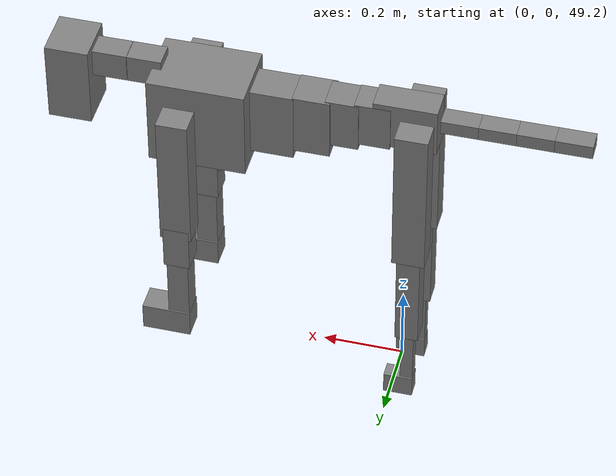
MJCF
<mujoco model="dog">

    <default>
        <joint armature="0.02" stiffness="1" damping="0.2" limited="true"/>
        <geom condim="3" friction="1 0.05 0.05" margin="0.01"/>
        <motor ctrllimited="true" ctrlrange="-1.0 1.0" forcelimited="true" gear="50"/>
    </default>

    <compiler inertiafromgeom="true" angle="radian"/>

    <option timestep="0.016" iterations="50" tolerance="1e-10" solver="Newton" jacobian="dense" cone="pyramidal"/>

    <size nconmax="20000" njmax="60000" nstack="5000000"/>
    <visual>
        <map force="0.1" zfar="30"/>
        <rgba haze="0.15 0.25 0.35 1"/>
        <quality shadowsize="2048"/>
        <global offwidth="800" offheight="800"/>
    </visual>

    <asset>
        <texture type="skybox" builtin="gradient" rgb1="0.3 0.5 0.7" rgb2="0 0 0" width="512" height="512"/>
        <texture name="texplane" type="2d" builtin="checker" rgb1=".2 .3 .4" rgb2=".1 0.15 0.2" width="512" height="512"
                 mark="cross" markrgb=".8 .8 .8"/>
        <texture name="texgeom" type="cube" builtin="flat" mark="cross" width="127" height="1278" rgb1="0.8 0.6 0.4"
                 rgb2="0.8 0.6 0.4" markrgb="1 1 1" random="0.01"/>

        <material name="matplane" reflectance="0.3" texture="texplane" texrepeat="1 1" texuniform="true"/>
        <material name="matgeom" texture="texgeom" texuniform="true" rgba="0.8 0.6 .4 1"/>
    </asset>

    <worldbody>
        <geom name="floor" pos="0 0 0" size="0 0 .25" type="plane" material="matplane" condim="3"/>

        <light directional="false" diffuse=".2 .2 .2" specular="0 0 0" pos="0 0 5" dir="0 0 -1" castshadow="false"/>
        <light mode="targetbodycom" target="torso" directional="false" diffuse=".8 .8 .8" specular="0.3 0.3 0.3"
               pos="0 0 4.0" dir="0 0 -1"/>

        <body name="root" pos="0 0 50">
            <freejoint name="root_1"/>
            <geom type="box" pos="0 0 -0.02" size="0.0774  0.0358  0.063" density="2030"/>

            <body name="spine1" pos="0.054 0 0">
                <joint name="spine1_y" axis="0 1 0" range="0 0.7" limited="true"/>
                <geom type="box" pos="0.02375 0 -0.03" size="0.04375  0.0375  0.05985" density="2030"/>

                <body name="spine2" pos="0.0612 0 0">
                    <joint name="spine2_y" axis="0 1 0" range="-0.15 0.15" limited="true"/>
                    <geom type="box" pos="0.03555  0  -0.04" size="0.04055  0.039  0.06615" density="2030"/>

                    <body name="spine3" pos="0.0730 0 0">
                        <joint name="spine3_y" axis="0 1 0" range="-0.15 0.15" limited="true"/>
                        <geom type="box" pos="0.03555  0  -0.057" size="0.04555  0.0445  0.081" density="2030"/>

                        <body name="spine4" pos="0.0780 0 0">
                            <joint name="spine4_y" axis="0 1 0" range="-0.15 0.15" limited="true"/>
                            <geom type="box" pos="0.05265  0  -0.07" size="0.05265  0.045  0.09135" density="2030"/>

                            <body name="torso" pos="0.1082 0 0">
                                <joint name="torso_y" axis="0 1 0" range="-0.15 0.15" limited="true"/>
                                <geom type="box" pos="0.11925  0  -0.085" size="0.11925  0.085  0.11745"
                                      density="2030"/>

                                <body name="neck1" pos="0.2160  0   0.0180">
                                    <joint name="neck1_y" axis="0 1 0" range="-1.2  -1" limited="true"/>
                                    <geom type="box" pos="0.0423  0  0" size="0.0423  0.03  0.036" density="2325"/>

                                    <body name="neck2" pos="0.0853  0  0">
                                        <joint name="neck2_y" axis="0 1 0" range="0.1  0" limited="true"/>
                                        <geom type="box" pos="0.0423  0  0" size="0.0423  0.03  0.036" density="2325"/>

                                        <body name="head" pos="0.0853  0  0">
                                            <joint name="head_y" axis="0 1 0" range="-0.3  -0.2" limited="true"/>
                                            <geom type="box" pos="0.0531  0  -0.055" size="0.0531  0.06  0.1044"
                                                  density="4030"/>

                                        </body>
                                    </body>
                                </body>

                                <body name="front_shoulder" pos="0.156  0   -0.0480">
                                    <joint name="front_shoulder_y" axis="0 1 0" range="-1 1.5" limited="true"/>
                                    <geom type="box" pos="0 0.13 -0.1542" size="0.0382  0.0326  0.1809" density="1158"/>
                                    <geom type="box" pos="0 -0.13 -0.1542" size="0.0382  0.0326  0.1809"
                                          density="1158"/>

                                    <body name="front_elbow" pos="0  0  -0.3085">
                                        <joint name="front_elbow_y" axis="0 1 0" range="-2 0" limited="true"/>
                                        <geom type="box" pos="0 0.13 -0.0590" size="0.0321  0.0329  0.0590"
                                              density="1081"/>
                                        <geom type="box" pos="0 -0.13 -0.0590" size="0.0321  0.0329  0.0590"
                                              density="1081"/>

                                        <body name="front_wrist" pos="0  0  -0.1180">
                                            <joint name="front_wrist_y" axis="0 1 0" range="-0.2 0" limited="true"/>
                                            <geom type="box" pos="0 0.13 -0.0868" size="0.0262  0.0291  0.0999"
                                                  density="1664"/>
                                            <geom type="box" pos="0 -0.13 -0.0868" size="0.0262  0.0291  0.0999"
                                                  density="1664"/>

                                            <body name="front_finger_end" pos="0  0  -0.1736">
                                                <joint name="front_finger_y" axis="0 1 0" range="-0.4 1"
                                                       limited="true"/>
                                                <geom type="box" pos="0.0328  0.13  -0.0206"
                                                      size="0.0602  0.0328  0.0356" density="1515"/>
                                                <geom type="box" pos="0.0328  -0.13  -0.0206"
                                                      size="0.0602  0.0328  0.0356" density="1515"/>

                                            </body>

                                        </body>
                                    </body>
                                </body>

                            </body>
                        </body>
                    </body>
                </body>
            </body>

            <body name="back_hip" pos="-0.03 0 -0.018">
                <joint name="back_hip_y" axis="0 1 0" range="-1.5 0.3" limited="true"/>
                <geom type="box" pos="0 0.07 -0.1769" size="0.0402  0.0315  0.1997" density="1154"/>
                <geom type="box" pos="0 -0.07 -0.1769" size="0.0402  0.0315  0.1997" density="1154"/>

                <body name="back_knee" pos="0  0  -0.3538">
                    <joint name="back_knee_y" axis="0 1 0" range="0 2.8" limited="true"/>
                    <geom type="box" pos="0 0.07 -0.1313" size="0.0286  0.0282  0.1468" density="1227"/>
                    <geom type="box" pos="0 -0.07 -0.1313" size="0.0286  0.0282  0.1468" density="1227"/>

                    <body name="back_ankle" pos="0  0  -0.2625">
                        <joint name="back_ankle_y" axis="0 1 0" range="-2.2 0" limited="true"/>
                        <geom type="box" pos="0 0.07 -0.0900" size="0.0156  0.0156  0.1012" density="1284"/>
                        <geom type="box" pos="0 -0.07 -0.0900" size="0.0156  0.0156  0.1012" density="1284"/>

                        <body name="back_toe_end" pos="0  0  -0.1799">
                            <joint name="back_toe_y" axis="0 1 0" range="-0.4 1" limited="true"/>
                            <geom type="box" pos="0.0198  0.07  -0.0136" size="0.0363  0.0198  0.0286" density="1515"/>
                            <geom type="box" pos="0.0198  -0.07  -0.0136" size="0.0363  0.0198  0.0286" density="1515"/>

                        </body>
                    </body>
                </body>
            </body>

            <body name="tail1" pos="-0.074 0 -0.006">
                <joint name="tail1_y" axis="0 1 0" range="-0.2 0.2" limited="true"/>
                <geom type="box" pos="-0.0536  0  0" size="0.045  0.025  0.0175" density="1587"/>

                <body name="tail2" pos="-0.09 0 0">
                    <joint name="tail2_y" axis="0 1 0" range="-0.2 0.2" limited="true"/>
                    <geom type="box" pos="-0.0536  0  0" size="0.045  0.025  0.0175" density="1587"/>

                    <body name="tail3" pos="-0.09 0 0">
                        <joint name="tail3_y" axis="0 1 0" range="-0.2 0.2" limited="true"/>
                        <geom type="box" pos="-0.0536  0  0" size="0.045  0.025  0.0175" density="1587"/>

                        <body name="tail4" pos="-0.09 0 0">
                            <joint name="tail4_y" axis="0 1 0" range="-0.2 0.2" limited="true"/>
                            <geom type="box" pos="-0.0536  0  0" size="0.045  0.025  0.0175" density="1587"/>

                        </body>
                    </body>
                </body>
            </body>
        </body>
    </worldbody>

    <actuator>
        <motor joint="spine1_y" forcerange="-150 150     "/>
        <motor joint="spine2_y" forcerange="-150 150     "/>
        <motor joint="spine3_y" forcerange="-150 150     "/>
        <motor joint="spine4_y" forcerange="-150 150     "/>
        <motor joint="torso_y" forcerange="-150 150     "/>
        <motor joint="neck1_y" forcerange="-100 100       "/>
        <motor joint="neck2_y" forcerange="-100 100       "/>
        <motor joint="head_y" forcerange="-150 150       "/>
        <motor joint="front_shoulder_y" forcerange="-122.26 195.21"/>
        <motor joint="front_elbow_y" forcerange="-170.06 168.91"/>
        <motor joint="front_wrist_y" forcerange="-119.54 113.62"/>
        <motor joint="front_finger_y" forcerange="-84.93 50.14"/>
        <motor joint="back_hip_y" forcerange="-398.89 221.24"/>
        <motor joint="back_knee_y" forcerange="-387.41 222.25"/>
        <motor joint="back_angle_y" forcerange="-66.10 83.70"/>
        <motor joint="back_toe_y" forcerange="-21.08 57.21"/>
        <motor joint="tail1_y" forcerange="-50 50     "/>
        <motor joint="tail2_y" forcerange="-50 50     "/>
        <motor joint="tail3_y" forcerange="-50 50     "/>
        <motor joint="tail4_y" forcerange="-50 50     "/>
    </actuator>
</mujoco>
